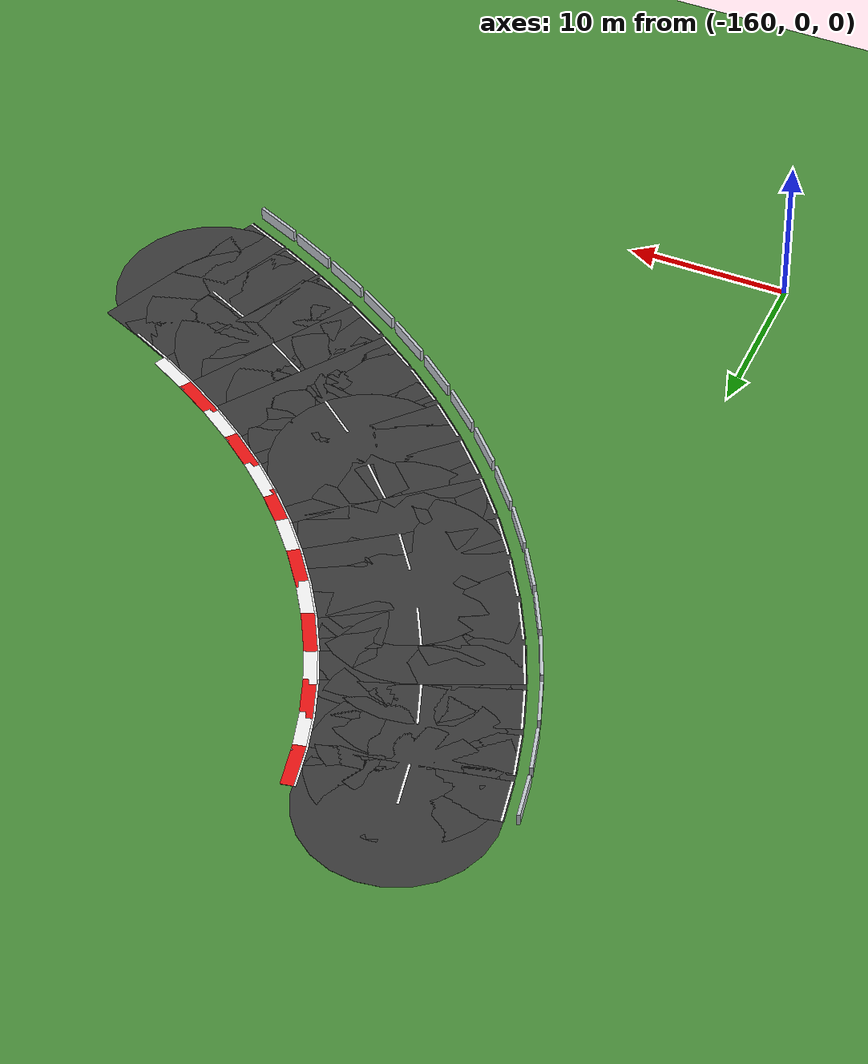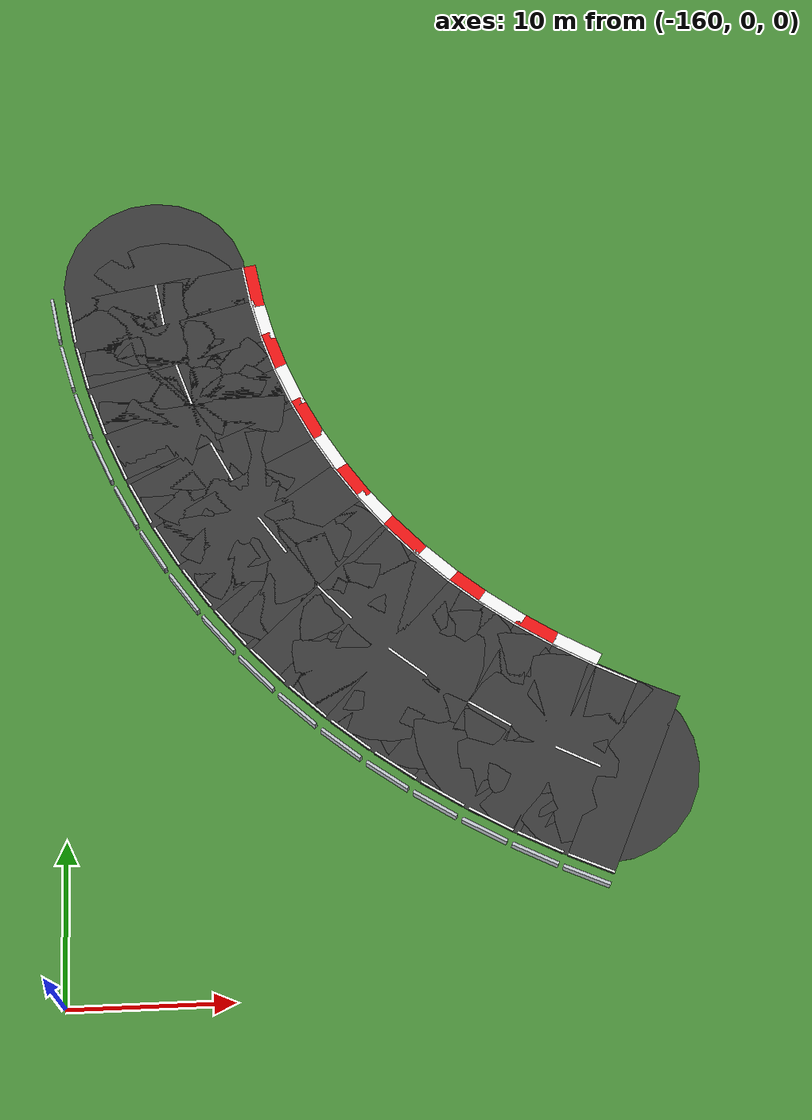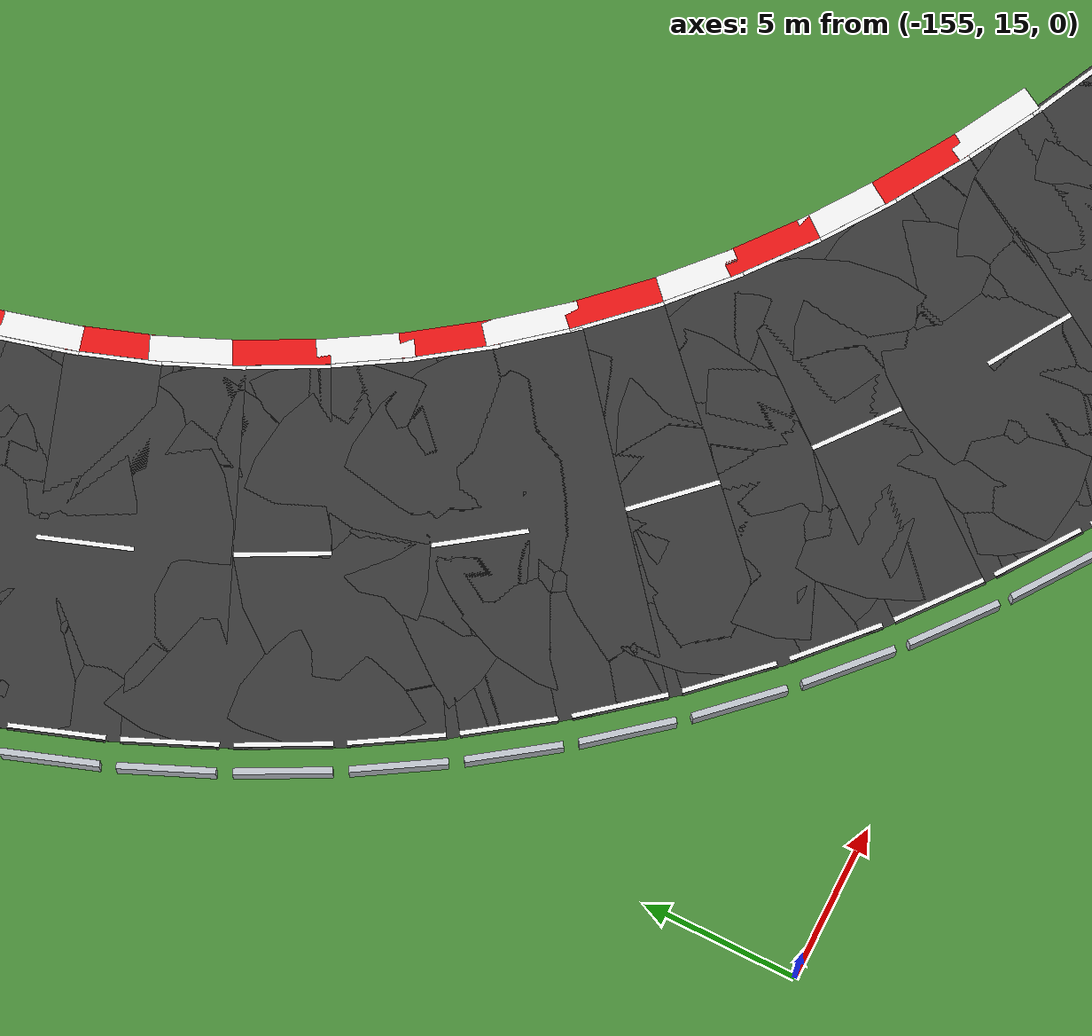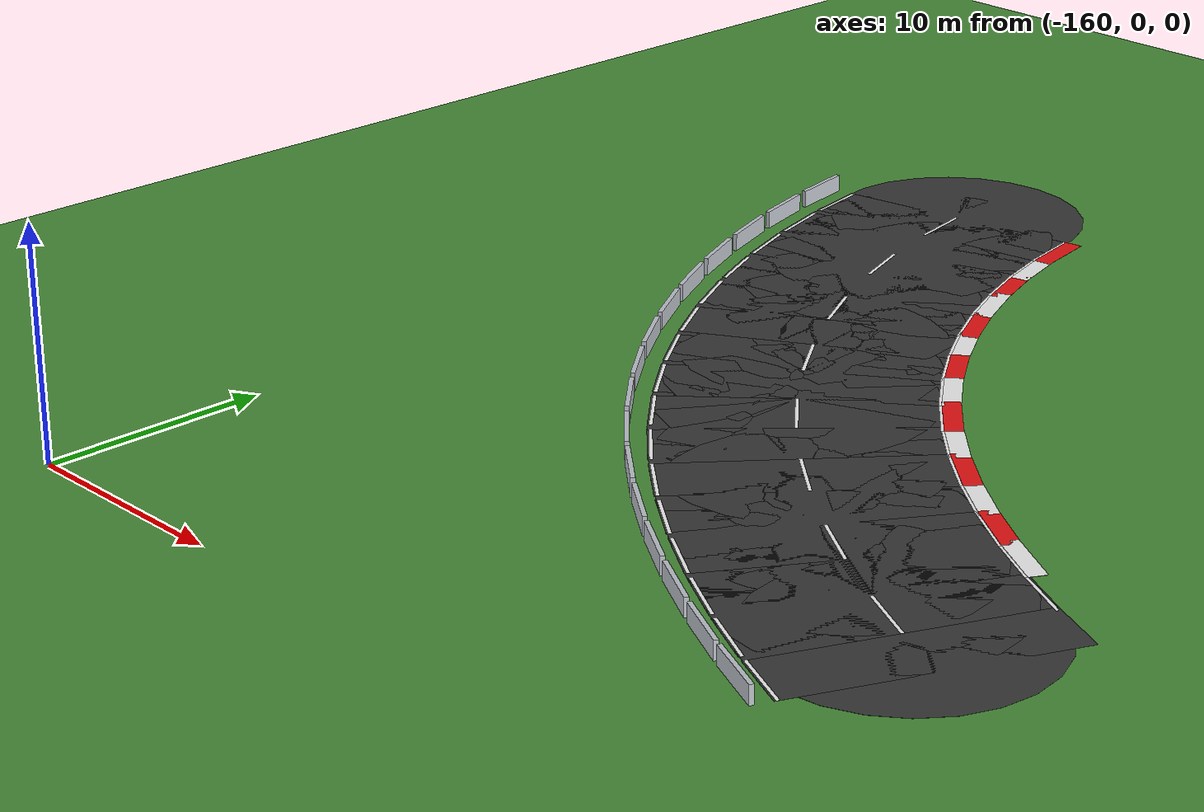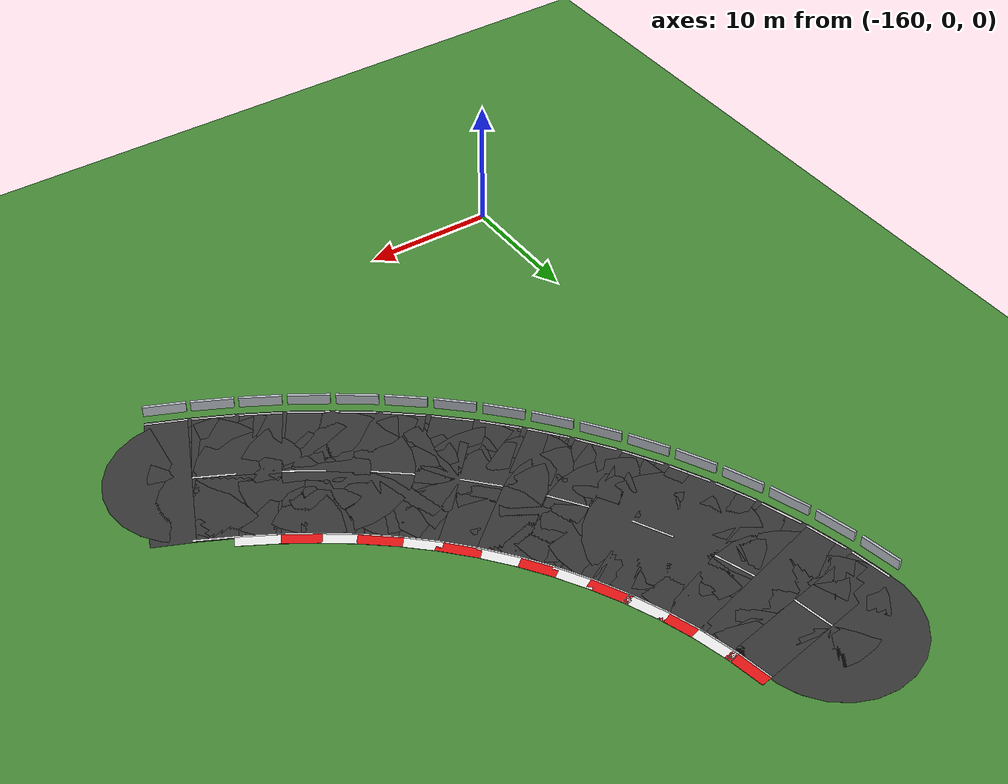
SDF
<sdf version="1.6">
 <world name="sem_silesia_ring_2026">
  <model name="ground_plane">
   <static>true</static>
   <link name="link">
    <collision name="collision">
     <geometry><plane><normal>0 0 1</normal><size>1200 1200</size></plane></geometry>
     <surface><friction><ode><mu>0.6</mu><mu2>0.6</mu2></ode></friction></surface>
    </collision>
    <visual name="visual">
     <geometry><plane><normal>0 0 1</normal><size>1200 1200</size></plane></geometry>
     <material><ambient>0.28 0.55 0.22 1</ambient><diffuse>0.28 0.55 0.22 1</diffuse></material>
    </visual>
   </link>
  </model>
  <model name="road_s382">
   <static>true</static>
   <pose>-154.1291 45.8454 0.0030 0 0 -1.3925</pose>
   <link name="link">
    <visual name="v">
     <geometry><box><size>3.0018 12.0000 0.0060</size></box></geometry>
     <material><ambient>0.22 0.22 0.22 1</ambient><diffuse>0.22 0.22 0.22 1</diffuse></material>
    </visual>
    <collision name="c">
     <geometry><box><size>3.0018 12.0000 0.0060</size></box></geometry>
     <surface><friction><ode><mu>0.9</mu><mu2>0.9</mu2></ode></friction></surface>
    </collision>
   </link>
  </model>
  <model name="road_jnt382">
   <static>true</static>
   <pose>-154.3953 47.3225 0.0030 0 0 0</pose>
   <link name="link">
    <visual name="v">
     <geometry><cylinder><radius>6.0000</radius><length>0.0060</length></cylinder></geometry>
     <material><ambient>0.22 0.22 0.22 1</ambient><diffuse>0.22 0.22 0.22 1</diffuse></material>
    </visual>
    <collision name="c">
     <geometry><cylinder><radius>6.0000</radius><length>0.0060</length></cylinder></geometry>
     <surface><friction><ode><mu>0.9</mu><mu2>0.9</mu2></ode></friction></surface>
    </collision>
   </link>
  </model>
  <model name="wl_L_s382">
   <static>true</static>
   <pose>-148.3719 46.8828 0.0070 0 0 -1.3925</pose>
   <link name="link">
    <visual name="v">
     <geometry><box><size>3.0018 0.1500 0.0080</size></box></geometry>
     <material><ambient>0.95 0.95 0.95 1</ambient><diffuse>0.95 0.95 0.95 1</diffuse></material>
    </visual>
   </link>
  </model>
  <model name="wl_R_s382">
   <static>true</static>
   <pose>-159.8864 44.8080 0.0070 0 0 -1.3925</pose>
   <link name="link">
    <visual name="v">
     <geometry><box><size>3.0018 0.1500 0.0080</size></box></geometry>
     <material><ambient>0.95 0.95 0.95 1</ambient><diffuse>0.95 0.95 0.95 1</diffuse></material>
    </visual>
   </link>
  </model>
  <model name="cd_s382">
   <static>true</static>
   <pose>-154.1291 45.8454 0.0070 0 0 -1.3925</pose>
   <link name="link">
    <visual name="v">
     <geometry><box><size>3.0018 0.1500 0.0080</size></box></geometry>
     <material><ambient>0.95 0.95 0.95 1</ambient><diffuse>0.95 0.95 0.95 1</diffuse></material>
    </visual>
   </link>
  </model>
  <model name="kerb_L_382">
   <static>true</static>
   <pose>-147.9290 46.9626 0.0120 0 0 -1.3925</pose>
   <link name="link">
    <visual name="v">
     <geometry><box><size>3.0018 0.8000 0.0160</size></box></geometry>
     <material><ambient>0.92 0.08 0.08 1</ambient><diffuse>0.92 0.08 0.08 1</diffuse></material>
    </visual>
   </link>
  </model>
  <model name="arm_outR_382">
   <static>true</static>
   <pose>-160.8214 44.6395 0.4000 0 0 -1.3925</pose>
   <link name="link">
    <visual name="v">
     <geometry><box><size>3.0018 0.2000 0.8000</size></box></geometry>
     <material><ambient>0.75 0.77 0.80 1</ambient><diffuse>0.75 0.77 0.80 1</diffuse></material>
    </visual>
    <collision name="c">
     <geometry><box><size>3.0018 0.2000 0.8000</size></box></geometry>
     <surface><friction><ode><mu>0.8</mu><mu2>0.8</mu2></ode></friction></surface>
    </collision>
   </link>
  </model>
  <model name="road_s383">
   <static>true</static>
   <pose>-153.4832 42.9163 0.0030 0 0 -1.3150</pose>
   <link name="link">
    <visual name="v">
     <geometry><box><size>3.0018 12.0000 0.0060</size></box></geometry>
     <material><ambient>0.22 0.22 0.22 1</ambient><diffuse>0.22 0.22 0.22 1</diffuse></material>
    </visual>
    <collision name="c">
     <geometry><box><size>3.0018 12.0000 0.0060</size></box></geometry>
     <surface><friction><ode><mu>0.9</mu><mu2>0.9</mu2></ode></friction></surface>
    </collision>
   </link>
  </model>
  <model name="road_jnt383">
   <static>true</static>
   <pose>-153.8630 44.3683 0.0030 0 0 0</pose>
   <link name="link">
    <visual name="v">
     <geometry><cylinder><radius>6.0000</radius><length>0.0060</length></cylinder></geometry>
     <material><ambient>0.22 0.22 0.22 1</ambient><diffuse>0.22 0.22 0.22 1</diffuse></material>
    </visual>
    <collision name="c">
     <geometry><cylinder><radius>6.0000</radius><length>0.0060</length></cylinder></geometry>
     <surface><friction><ode><mu>0.9</mu><mu2>0.9</mu2></ode></friction></surface>
    </collision>
   </link>
  </model>
  <model name="wl_L_s383">
   <static>true</static>
   <pose>-147.8236 44.3963 0.0070 0 0 -1.3150</pose>
   <link name="link">
    <visual name="v">
     <geometry><box><size>3.0018 0.1500 0.0080</size></box></geometry>
     <material><ambient>0.95 0.95 0.95 1</ambient><diffuse>0.95 0.95 0.95 1</diffuse></material>
    </visual>
   </link>
  </model>
  <model name="wl_R_s383">
   <static>true</static>
   <pose>-159.1429 41.4362 0.0070 0 0 -1.3150</pose>
   <link name="link">
    <visual name="v">
     <geometry><box><size>3.0018 0.1500 0.0080</size></box></geometry>
     <material><ambient>0.95 0.95 0.95 1</ambient><diffuse>0.95 0.95 0.95 1</diffuse></material>
    </visual>
   </link>
  </model>
  <model name="kerb_L_383">
   <static>true</static>
   <pose>-147.3882 44.5102 0.0120 0 0 -1.3150</pose>
   <link name="link">
    <visual name="v">
     <geometry><box><size>3.0018 0.8000 0.0160</size></box></geometry>
     <material><ambient>0.95 0.95 0.95 1</ambient><diffuse>0.95 0.95 0.95 1</diffuse></material>
    </visual>
   </link>
  </model>
  <model name="arm_outR_383">
   <static>true</static>
   <pose>-160.0620 41.1958 0.4000 0 0 -1.3150</pose>
   <link name="link">
    <visual name="v">
     <geometry><box><size>3.0018 0.2000 0.8000</size></box></geometry>
     <material><ambient>0.75 0.77 0.80 1</ambient><diffuse>0.75 0.77 0.80 1</diffuse></material>
    </visual>
    <collision name="c">
     <geometry><box><size>3.0018 0.2000 0.8000</size></box></geometry>
     <surface><friction><ode><mu>0.8</mu><mu2>0.8</mu2></ode></friction></surface>
    </collision>
   </link>
  </model>
  <model name="road_s384">
   <static>true</static>
   <pose>-152.6162 40.0446 0.0030 0 0 -1.2401</pose>
   <link name="link">
    <visual name="v">
     <geometry><box><size>3.0019 12.0000 0.0060</size></box></geometry>
     <material><ambient>0.22 0.22 0.22 1</ambient><diffuse>0.22 0.22 0.22 1</diffuse></material>
    </visual>
    <collision name="c">
     <geometry><box><size>3.0019 12.0000 0.0060</size></box></geometry>
     <surface><friction><ode><mu>0.9</mu><mu2>0.9</mu2></ode></friction></surface>
    </collision>
   </link>
  </model>
  <model name="road_jnt384">
   <static>true</static>
   <pose>-153.1035 41.4642 0.0030 0 0 0</pose>
   <link name="link">
    <visual name="v">
     <geometry><cylinder><radius>6.0000</radius><length>0.0060</length></cylinder></geometry>
     <material><ambient>0.22 0.22 0.22 1</ambient><diffuse>0.22 0.22 0.22 1</diffuse></material>
    </visual>
    <collision name="c">
     <geometry><cylinder><radius>6.0000</radius><length>0.0060</length></cylinder></geometry>
     <surface><friction><ode><mu>0.9</mu><mu2>0.9</mu2></ode></friction></surface>
    </collision>
   </link>
  </model>
  <model name="wl_L_s384">
   <static>true</static>
   <pose>-147.0831 41.9439 0.0070 0 0 -1.2401</pose>
   <link name="link">
    <visual name="v">
     <geometry><box><size>3.0019 0.1500 0.0080</size></box></geometry>
     <material><ambient>0.95 0.95 0.95 1</ambient><diffuse>0.95 0.95 0.95 1</diffuse></material>
    </visual>
   </link>
  </model>
  <model name="wl_R_s384">
   <static>true</static>
   <pose>-158.1493 38.1452 0.0070 0 0 -1.2401</pose>
   <link name="link">
    <visual name="v">
     <geometry><box><size>3.0019 0.1500 0.0080</size></box></geometry>
     <material><ambient>0.95 0.95 0.95 1</ambient><diffuse>0.95 0.95 0.95 1</diffuse></material>
    </visual>
   </link>
  </model>
  <model name="cd_s384">
   <static>true</static>
   <pose>-152.6162 40.0446 0.0070 0 0 -1.2401</pose>
   <link name="link">
    <visual name="v">
     <geometry><box><size>3.0019 0.1500 0.0080</size></box></geometry>
     <material><ambient>0.95 0.95 0.95 1</ambient><diffuse>0.95 0.95 0.95 1</diffuse></material>
    </visual>
   </link>
  </model>
  <model name="kerb_L_384">
   <static>true</static>
   <pose>-146.6575 42.0900 0.0120 0 0 -1.2401</pose>
   <link name="link">
    <visual name="v">
     <geometry><box><size>3.0019 0.8000 0.0160</size></box></geometry>
     <material><ambient>0.92 0.08 0.08 1</ambient><diffuse>0.92 0.08 0.08 1</diffuse></material>
    </visual>
   </link>
  </model>
  <model name="arm_outR_384">
   <static>true</static>
   <pose>-159.0478 37.8368 0.4000 0 0 -1.2401</pose>
   <link name="link">
    <visual name="v">
     <geometry><box><size>3.0019 0.2000 0.8000</size></box></geometry>
     <material><ambient>0.75 0.77 0.80 1</ambient><diffuse>0.75 0.77 0.80 1</diffuse></material>
    </visual>
    <collision name="c">
     <geometry><box><size>3.0019 0.2000 0.8000</size></box></geometry>
     <surface><friction><ode><mu>0.8</mu><mu2>0.8</mu2></ode></friction></surface>
    </collision>
   </link>
  </model>
  <model name="road_s385">
   <static>true</static>
   <pose>-151.5398 37.2444 0.0030 0 0 -1.1675</pose>
   <link name="link">
    <visual name="v">
     <geometry><box><size>3.0019 12.0000 0.0060</size></box></geometry>
     <material><ambient>0.22 0.22 0.22 1</ambient><diffuse>0.22 0.22 0.22 1</diffuse></material>
    </visual>
    <collision name="c">
     <geometry><box><size>3.0019 12.0000 0.0060</size></box></geometry>
     <surface><friction><ode><mu>0.9</mu><mu2>0.9</mu2></ode></friction></surface>
    </collision>
   </link>
  </model>
  <model name="road_jnt385">
   <static>true</static>
   <pose>-152.1289 38.6249 0.0030 0 0 0</pose>
   <link name="link">
    <visual name="v">
     <geometry><cylinder><radius>6.0000</radius><length>0.0060</length></cylinder></geometry>
     <material><ambient>0.22 0.22 0.22 1</ambient><diffuse>0.22 0.22 0.22 1</diffuse></material>
    </visual>
    <collision name="c">
     <geometry><cylinder><radius>6.0000</radius><length>0.0060</length></cylinder></geometry>
     <surface><friction><ode><mu>0.9</mu><mu2>0.9</mu2></ode></friction></surface>
    </collision>
   </link>
  </model>
  <model name="wl_L_s385">
   <static>true</static>
   <pose>-146.1592 39.5402 0.0070 0 0 -1.1675</pose>
   <link name="link">
    <visual name="v">
     <geometry><box><size>3.0019 0.1500 0.0080</size></box></geometry>
     <material><ambient>0.95 0.95 0.95 1</ambient><diffuse>0.95 0.95 0.95 1</diffuse></material>
    </visual>
   </link>
  </model>
  <model name="wl_R_s385">
   <static>true</static>
   <pose>-156.9205 34.9486 0.0070 0 0 -1.1675</pose>
   <link name="link">
    <visual name="v">
     <geometry><box><size>3.0019 0.1500 0.0080</size></box></geometry>
     <material><ambient>0.95 0.95 0.95 1</ambient><diffuse>0.95 0.95 0.95 1</diffuse></material>
    </visual>
   </link>
  </model>
  <model name="kerb_L_385">
   <static>true</static>
   <pose>-145.7453 39.7168 0.0120 0 0 -1.1675</pose>
   <link name="link">
    <visual name="v">
     <geometry><box><size>3.0019 0.8000 0.0160</size></box></geometry>
     <material><ambient>0.95 0.95 0.95 1</ambient><diffuse>0.95 0.95 0.95 1</diffuse></material>
    </visual>
   </link>
  </model>
  <model name="arm_outR_385">
   <static>true</static>
   <pose>-157.7943 34.5757 0.4000 0 0 -1.1675</pose>
   <link name="link">
    <visual name="v">
     <geometry><box><size>3.0019 0.2000 0.8000</size></box></geometry>
     <material><ambient>0.75 0.77 0.80 1</ambient><diffuse>0.75 0.77 0.80 1</diffuse></material>
    </visual>
    <collision name="c">
     <geometry><box><size>3.0019 0.2000 0.8000</size></box></geometry>
     <surface><friction><ode><mu>0.8</mu><mu2>0.8</mu2></ode></friction></surface>
    </collision>
   </link>
  </model>
  <model name="road_s386">
   <static>true</static>
   <pose>-150.2655 34.5285 0.0030 0 0 -1.0967</pose>
   <link name="link">
    <visual name="v">
     <geometry><box><size>3.0019 12.0000 0.0060</size></box></geometry>
     <material><ambient>0.22 0.22 0.22 1</ambient><diffuse>0.22 0.22 0.22 1</diffuse></material>
    </visual>
    <collision name="c">
     <geometry><box><size>3.0019 12.0000 0.0060</size></box></geometry>
     <surface><friction><ode><mu>0.9</mu><mu2>0.9</mu2></ode></friction></surface>
    </collision>
   </link>
  </model>
  <model name="road_jnt386">
   <static>true</static>
   <pose>-150.9508 35.8639 0.0030 0 0 0</pose>
   <link name="link">
    <visual name="v">
     <geometry><cylinder><radius>6.0000</radius><length>0.0060</length></cylinder></geometry>
     <material><ambient>0.22 0.22 0.22 1</ambient><diffuse>0.22 0.22 0.22 1</diffuse></material>
    </visual>
    <collision name="c">
     <geometry><cylinder><radius>6.0000</radius><length>0.0060</length></cylinder></geometry>
     <surface><friction><ode><mu>0.9</mu><mu2>0.9</mu2></ode></friction></surface>
    </collision>
   </link>
  </model>
  <model name="wl_L_s386">
   <static>true</static>
   <pose>-145.0608 37.1994 0.0070 0 0 -1.0967</pose>
   <link name="link">
    <visual name="v">
     <geometry><box><size>3.0019 0.1500 0.0080</size></box></geometry>
     <material><ambient>0.95 0.95 0.95 1</ambient><diffuse>0.95 0.95 0.95 1</diffuse></material>
    </visual>
   </link>
  </model>
  <model name="wl_R_s386">
   <static>true</static>
   <pose>-155.4702 31.8576 0.0070 0 0 -1.0967</pose>
   <link name="link">
    <visual name="v">
     <geometry><box><size>3.0019 0.1500 0.0080</size></box></geometry>
     <material><ambient>0.95 0.95 0.95 1</ambient><diffuse>0.95 0.95 0.95 1</diffuse></material>
    </visual>
   </link>
  </model>
  <model name="cd_s386">
   <static>true</static>
   <pose>-150.2655 34.5285 0.0070 0 0 -1.0967</pose>
   <link name="link">
    <visual name="v">
     <geometry><box><size>3.0019 0.1500 0.0080</size></box></geometry>
     <material><ambient>0.95 0.95 0.95 1</ambient><diffuse>0.95 0.95 0.95 1</diffuse></material>
    </visual>
   </link>
  </model>
  <model name="kerb_L_386">
   <static>true</static>
   <pose>-144.6605 37.4048 0.0120 0 0 -1.0967</pose>
   <link name="link">
    <visual name="v">
     <geometry><box><size>3.0019 0.8000 0.0160</size></box></geometry>
     <material><ambient>0.92 0.08 0.08 1</ambient><diffuse>0.92 0.08 0.08 1</diffuse></material>
    </visual>
   </link>
  </model>
  <model name="arm_outR_386">
   <static>true</static>
   <pose>-156.3154 31.4239 0.4000 0 0 -1.0967</pose>
   <link name="link">
    <visual name="v">
     <geometry><box><size>3.0019 0.2000 0.8000</size></box></geometry>
     <material><ambient>0.75 0.77 0.80 1</ambient><diffuse>0.75 0.77 0.80 1</diffuse></material>
    </visual>
    <collision name="c">
     <geometry><box><size>3.0019 0.2000 0.8000</size></box></geometry>
     <surface><friction><ode><mu>0.8</mu><mu2>0.8</mu2></ode></friction></surface>
    </collision>
   </link>
  </model>
  <model name="road_s387">
   <static>true</static>
   <pose>-148.8037 31.9086 0.0030 0 0 -1.0271</pose>
   <link name="link">
    <visual name="v">
     <geometry><box><size>3.0019 12.0000 0.0060</size></box></geometry>
     <material><ambient>0.22 0.22 0.22 1</ambient><diffuse>0.22 0.22 0.22 1</diffuse></material>
    </visual>
    <collision name="c">
     <geometry><box><size>3.0019 12.0000 0.0060</size></box></geometry>
     <surface><friction><ode><mu>0.9</mu><mu2>0.9</mu2></ode></friction></surface>
    </collision>
   </link>
  </model>
  <model name="road_jnt387">
   <static>true</static>
   <pose>-149.5802 33.1931 0.0030 0 0 0</pose>
   <link name="link">
    <visual name="v">
     <geometry><cylinder><radius>6.0000</radius><length>0.0060</length></cylinder></geometry>
     <material><ambient>0.22 0.22 0.22 1</ambient><diffuse>0.22 0.22 0.22 1</diffuse></material>
    </visual>
    <collision name="c">
     <geometry><cylinder><radius>6.0000</radius><length>0.0060</length></cylinder></geometry>
     <surface><friction><ode><mu>0.9</mu><mu2>0.9</mu2></ode></friction></surface>
    </collision>
   </link>
  </model>
  <model name="wl_L_s387">
   <static>true</static>
   <pose>-143.7974 34.9350 0.0070 0 0 -1.0271</pose>
   <link name="link">
    <visual name="v">
     <geometry><box><size>3.0019 0.1500 0.0080</size></box></geometry>
     <material><ambient>0.95 0.95 0.95 1</ambient><diffuse>0.95 0.95 0.95 1</diffuse></material>
    </visual>
   </link>
  </model>
  <model name="wl_R_s387">
   <static>true</static>
   <pose>-153.8101 28.8822 0.0070 0 0 -1.0271</pose>
   <link name="link">
    <visual name="v">
     <geometry><box><size>3.0019 0.1500 0.0080</size></box></geometry>
     <material><ambient>0.95 0.95 0.95 1</ambient><diffuse>0.95 0.95 0.95 1</diffuse></material>
    </visual>
   </link>
  </model>
  <model name="kerb_L_387">
   <static>true</static>
   <pose>-143.4123 35.1677 0.0120 0 0 -1.0271</pose>
   <link name="link">
    <visual name="v">
     <geometry><box><size>3.0019 0.8000 0.0160</size></box></geometry>
     <material><ambient>0.95 0.95 0.95 1</ambient><diffuse>0.95 0.95 0.95 1</diffuse></material>
    </visual>
   </link>
  </model>
  <model name="arm_outR_387">
   <static>true</static>
   <pose>-154.6231 28.3907 0.4000 0 0 -1.0271</pose>
   <link name="link">
    <visual name="v">
     <geometry><box><size>3.0019 0.2000 0.8000</size></box></geometry>
     <material><ambient>0.75 0.77 0.80 1</ambient><diffuse>0.75 0.77 0.80 1</diffuse></material>
    </visual>
    <collision name="c">
     <geometry><box><size>3.0019 0.2000 0.8000</size></box></geometry>
     <surface><friction><ode><mu>0.8</mu><mu2>0.8</mu2></ode></friction></surface>
    </collision>
   </link>
  </model>
  <model name="road_s388">
   <static>true</static>
   <pose>-147.1640 29.3962 0.0030 0 0 -0.9580</pose>
   <link name="link">
    <visual name="v">
     <geometry><box><size>3.0019 12.0000 0.0060</size></box></geometry>
     <material><ambient>0.22 0.22 0.22 1</ambient><diffuse>0.22 0.22 0.22 1</diffuse></material>
    </visual>
    <collision name="c">
     <geometry><box><size>3.0019 12.0000 0.0060</size></box></geometry>
     <surface><friction><ode><mu>0.9</mu><mu2>0.9</mu2></ode></friction></surface>
    </collision>
   </link>
  </model>
  <model name="road_jnt388">
   <static>true</static>
   <pose>-148.0272 30.6241 0.0030 0 0 0</pose>
   <link name="link">
    <visual name="v">
     <geometry><cylinder><radius>6.0000</radius><length>0.0060</length></cylinder></geometry>
     <material><ambient>0.22 0.22 0.22 1</ambient><diffuse>0.22 0.22 0.22 1</diffuse></material>
    </visual>
    <collision name="c">
     <geometry><cylinder><radius>6.0000</radius><length>0.0060</length></cylinder></geometry>
     <surface><friction><ode><mu>0.9</mu><mu2>0.9</mu2></ode></friction></surface>
    </collision>
   </link>
  </model>
  <model name="wl_L_s388">
   <static>true</static>
   <pose>-142.3783 32.7606 0.0070 0 0 -0.9580</pose>
   <link name="link">
    <visual name="v">
     <geometry><box><size>3.0019 0.1500 0.0080</size></box></geometry>
     <material><ambient>0.95 0.95 0.95 1</ambient><diffuse>0.95 0.95 0.95 1</diffuse></material>
    </visual>
   </link>
  </model>
  <model name="wl_R_s388">
   <static>true</static>
   <pose>-151.9497 26.0317 0.0070 0 0 -0.9580</pose>
   <link name="link">
    <visual name="v">
     <geometry><box><size>3.0019 0.1500 0.0080</size></box></geometry>
     <material><ambient>0.95 0.95 0.95 1</ambient><diffuse>0.95 0.95 0.95 1</diffuse></material>
    </visual>
   </link>
  </model>
  <model name="cd_s388">
   <static>true</static>
   <pose>-147.1640 29.3962 0.0070 0 0 -0.9580</pose>
   <link name="link">
    <visual name="v">
     <geometry><box><size>3.0019 0.1500 0.0080</size></box></geometry>
     <material><ambient>0.95 0.95 0.95 1</ambient><diffuse>0.95 0.95 0.95 1</diffuse></material>
    </visual>
   </link>
  </model>
  <model name="kerb_L_388">
   <static>true</static>
   <pose>-142.0102 33.0194 0.0120 0 0 -0.9580</pose>
   <link name="link">
    <visual name="v">
     <geometry><box><size>3.0019 0.8000 0.0160</size></box></geometry>
     <material><ambient>0.92 0.08 0.08 1</ambient><diffuse>0.92 0.08 0.08 1</diffuse></material>
    </visual>
   </link>
  </model>
  <model name="arm_outR_388">
   <static>true</static>
   <pose>-152.7269 25.4854 0.4000 0 0 -0.9580</pose>
   <link name="link">
    <visual name="v">
     <geometry><box><size>3.0019 0.2000 0.8000</size></box></geometry>
     <material><ambient>0.75 0.77 0.80 1</ambient><diffuse>0.75 0.77 0.80 1</diffuse></material>
    </visual>
    <collision name="c">
     <geometry><box><size>3.0019 0.2000 0.8000</size></box></geometry>
     <surface><friction><ode><mu>0.8</mu><mu2>0.8</mu2></ode></friction></surface>
    </collision>
   </link>
  </model>
  <model name="road_s389">
   <static>true</static>
   <pose>-145.3547 27.0030 0.0030 0 0 -0.8889</pose>
   <link name="link">
    <visual name="v">
     <geometry><box><size>3.0019 12.0000 0.0060</size></box></geometry>
     <material><ambient>0.22 0.22 0.22 1</ambient><diffuse>0.22 0.22 0.22 1</diffuse></material>
    </visual>
    <collision name="c">
     <geometry><box><size>3.0019 12.0000 0.0060</size></box></geometry>
     <surface><friction><ode><mu>0.9</mu><mu2>0.9</mu2></ode></friction></surface>
    </collision>
   </link>
  </model>
  <model name="road_jnt389">
   <static>true</static>
   <pose>-146.3008 28.1683 0.0030 0 0 0</pose>
   <link name="link">
    <visual name="v">
     <geometry><cylinder><radius>6.0000</radius><length>0.0060</length></cylinder></geometry>
     <material><ambient>0.22 0.22 0.22 1</ambient><diffuse>0.22 0.22 0.22 1</diffuse></material>
    </visual>
    <collision name="c">
     <geometry><cylinder><radius>6.0000</radius><length>0.0060</length></cylinder></geometry>
     <surface><friction><ode><mu>0.9</mu><mu2>0.9</mu2></ode></friction></surface>
    </collision>
   </link>
  </model>
  <model name="wl_L_s389">
   <static>true</static>
   <pose>-140.8130 30.6902 0.0070 0 0 -0.8889</pose>
   <link name="link">
    <visual name="v">
     <geometry><box><size>3.0019 0.1500 0.0080</size></box></geometry>
     <material><ambient>0.95 0.95 0.95 1</ambient><diffuse>0.95 0.95 0.95 1</diffuse></material>
    </visual>
   </link>
  </model>
  <model name="wl_R_s389">
   <static>true</static>
   <pose>-149.8964 23.3157 0.0070 0 0 -0.8889</pose>
   <link name="link">
    <visual name="v">
     <geometry><box><size>3.0019 0.1500 0.0080</size></box></geometry>
     <material><ambient>0.95 0.95 0.95 1</ambient><diffuse>0.95 0.95 0.95 1</diffuse></material>
    </visual>
   </link>
  </model>
  <model name="kerb_L_389">
   <static>true</static>
   <pose>-140.4637 30.9739 0.0120 0 0 -0.8889</pose>
   <link name="link">
    <visual name="v">
     <geometry><box><size>3.0019 0.8000 0.0160</size></box></geometry>
     <material><ambient>0.95 0.95 0.95 1</ambient><diffuse>0.95 0.95 0.95 1</diffuse></material>
    </visual>
   </link>
  </model>
  <model name="arm_outR_389">
   <static>true</static>
   <pose>-150.6339 22.7169 0.4000 0 0 -0.8889</pose>
   <link name="link">
    <visual name="v">
     <geometry><box><size>3.0019 0.2000 0.8000</size></box></geometry>
     <material><ambient>0.75 0.77 0.80 1</ambient><diffuse>0.75 0.77 0.80 1</diffuse></material>
    </visual>
    <collision name="c">
     <geometry><box><size>3.0019 0.2000 0.8000</size></box></geometry>
     <surface><friction><ode><mu>0.8</mu><mu2>0.8</mu2></ode></friction></surface>
    </collision>
   </link>
  </model>
  <model name="road_s390">
   <static>true</static>
   <pose>-143.3837 24.7412 0.0030 0 0 -0.8191</pose>
   <link name="link">
    <visual name="v">
     <geometry><box><size>3.0019 12.0000 0.0060</size></box></geometry>
     <material><ambient>0.22 0.22 0.22 1</ambient><diffuse>0.22 0.22 0.22 1</diffuse></material>
    </visual>
    <collision name="c">
     <geometry><box><size>3.0019 12.0000 0.0060</size></box></geometry>
     <surface><friction><ode><mu>0.9</mu><mu2>0.9</mu2></ode></friction></surface>
    </collision>
   </link>
  </model>
  <model name="road_jnt390">
   <static>true</static>
   <pose>-144.4086 25.8377 0.0030 0 0 0</pose>
   <link name="link">
    <visual name="v">
     <geometry><cylinder><radius>6.0000</radius><length>0.0060</length></cylinder></geometry>
     <material><ambient>0.22 0.22 0.22 1</ambient><diffuse>0.22 0.22 0.22 1</diffuse></material>
    </visual>
    <collision name="c">
     <geometry><cylinder><radius>6.0000</radius><length>0.0060</length></cylinder></geometry>
     <surface><friction><ode><mu>0.9</mu><mu2>0.9</mu2></ode></friction></surface>
    </collision>
   </link>
  </model>
  <model name="wl_L_s390">
   <static>true</static>
   <pose>-139.1100 28.7360 0.0070 0 0 -0.8191</pose>
   <link name="link">
    <visual name="v">
     <geometry><box><size>3.0019 0.1500 0.0080</size></box></geometry>
     <material><ambient>0.95 0.95 0.95 1</ambient><diffuse>0.95 0.95 0.95 1</diffuse></material>
    </visual>
   </link>
  </model>
  <model name="wl_R_s390">
   <static>true</static>
   <pose>-147.6573 20.7464 0.0070 0 0 -0.8191</pose>
   <link name="link">
    <visual name="v">
     <geometry><box><size>3.0019 0.1500 0.0080</size></box></geometry>
     <material><ambient>0.95 0.95 0.95 1</ambient><diffuse>0.95 0.95 0.95 1</diffuse></material>
    </visual>
   </link>
  </model>
  <model name="cd_s390">
   <static>true</static>
   <pose>-143.3837 24.7412 0.0070 0 0 -0.8191</pose>
   <link name="link">
    <visual name="v">
     <geometry><box><size>3.0019 0.1500 0.0080</size></box></geometry>
     <material><ambient>0.95 0.95 0.95 1</ambient><diffuse>0.95 0.95 0.95 1</diffuse></material>
    </visual>
   </link>
  </model>
  <model name="kerb_L_390">
   <static>true</static>
   <pose>-138.7813 29.0433 0.0120 0 0 -0.8191</pose>
   <link name="link">
    <visual name="v">
     <geometry><box><size>3.0019 0.8000 0.0160</size></box></geometry>
     <material><ambient>0.92 0.08 0.08 1</ambient><diffuse>0.92 0.08 0.08 1</diffuse></material>
    </visual>
   </link>
  </model>
  <model name="arm_outR_390">
   <static>true</static>
   <pose>-148.3514 20.0977 0.4000 0 0 -0.8191</pose>
   <link name="link">
    <visual name="v">
     <geometry><box><size>3.0019 0.2000 0.8000</size></box></geometry>
     <material><ambient>0.75 0.77 0.80 1</ambient><diffuse>0.75 0.77 0.80 1</diffuse></material>
    </visual>
    <collision name="c">
     <geometry><box><size>3.0019 0.2000 0.8000</size></box></geometry>
     <surface><friction><ode><mu>0.8</mu><mu2>0.8</mu2></ode></friction></surface>
    </collision>
   </link>
  </model>
  <model name="road_s391">
   <static>true</static>
   <pose>-141.2613 22.6206 0.0030 0 0 -0.7508</pose>
   <link name="link">
    <visual name="v">
     <geometry><box><size>3.0020 12.0000 0.0060</size></box></geometry>
     <material><ambient>0.22 0.22 0.22 1</ambient><diffuse>0.22 0.22 0.22 1</diffuse></material>
    </visual>
    <collision name="c">
     <geometry><box><size>3.0020 12.0000 0.0060</size></box></geometry>
     <surface><friction><ode><mu>0.9</mu><mu2>0.9</mu2></ode></friction></surface>
    </collision>
   </link>
  </model>
  <model name="road_jnt391">
   <static>true</static>
   <pose>-142.3587 23.6447 0.0030 0 0 0</pose>
   <link name="link">
    <visual name="v">
     <geometry><cylinder><radius>6.0000</radius><length>0.0060</length></cylinder></geometry>
     <material><ambient>0.22 0.22 0.22 1</ambient><diffuse>0.22 0.22 0.22 1</diffuse></material>
    </visual>
    <collision name="c">
     <geometry><cylinder><radius>6.0000</radius><length>0.0060</length></cylinder></geometry>
     <surface><friction><ode><mu>0.9</mu><mu2>0.9</mu2></ode></friction></surface>
    </collision>
   </link>
  </model>
  <model name="wl_L_s391">
   <static>true</static>
   <pose>-137.2701 26.8976 0.0070 0 0 -0.7508</pose>
   <link name="link">
    <visual name="v">
     <geometry><box><size>3.0020 0.1500 0.0080</size></box></geometry>
     <material><ambient>0.95 0.95 0.95 1</ambient><diffuse>0.95 0.95 0.95 1</diffuse></material>
    </visual>
   </link>
  </model>
  <model name="wl_R_s391">
   <static>true</static>
   <pose>-145.2526 18.3436 0.0070 0 0 -0.7508</pose>
   <link name="link">
    <visual name="v">
     <geometry><box><size>3.0020 0.1500 0.0080</size></box></geometry>
     <material><ambient>0.95 0.95 0.95 1</ambient><diffuse>0.95 0.95 0.95 1</diffuse></material>
    </visual>
   </link>
  </model>
  <model name="kerb_L_391">
   <static>true</static>
   <pose>-136.9631 27.2266 0.0120 0 0 -0.7508</pose>
   <link name="link">
    <visual name="v">
     <geometry><box><size>3.0020 0.8000 0.0160</size></box></geometry>
     <material><ambient>0.95 0.95 0.95 1</ambient><diffuse>0.95 0.95 0.95 1</diffuse></material>
    </visual>
   </link>
  </model>
  <model name="arm_outR_391">
   <static>true</static>
   <pose>-145.9007 17.6491 0.4000 0 0 -0.7508</pose>
   <link name="link">
    <visual name="v">
     <geometry><box><size>3.0020 0.2000 0.8000</size></box></geometry>
     <material><ambient>0.75 0.77 0.80 1</ambient><diffuse>0.75 0.77 0.80 1</diffuse></material>
    </visual>
    <collision name="c">
     <geometry><box><size>3.0020 0.2000 0.8000</size></box></geometry>
     <surface><friction><ode><mu>0.8</mu><mu2>0.8</mu2></ode></friction></surface>
    </collision>
   </link>
  </model>
  <model name="road_s392">
   <static>true</static>
   <pose>-139.0020 20.6463 0.0030 0 0 -0.6855</pose>
   <link name="link">
    <visual name="v">
     <geometry><box><size>3.0020 12.0000 0.0060</size></box></geometry>
     <material><ambient>0.22 0.22 0.22 1</ambient><diffuse>0.22 0.22 0.22 1</diffuse></material>
    </visual>
    <collision name="c">
     <geometry><box><size>3.0020 12.0000 0.0060</size></box></geometry>
     <surface><friction><ode><mu>0.9</mu><mu2>0.9</mu2></ode></friction></surface>
    </collision>
   </link>
  </model>
  <model name="road_jnt392">
   <static>true</static>
   <pose>-140.1639 21.5965 0.0030 0 0 0</pose>
   <link name="link">
    <visual name="v">
     <geometry><cylinder><radius>6.0000</radius><length>0.0060</length></cylinder></geometry>
     <material><ambient>0.22 0.22 0.22 1</ambient><diffuse>0.22 0.22 0.22 1</diffuse></material>
    </visual>
    <collision name="c">
     <geometry><cylinder><radius>6.0000</radius><length>0.0060</length></cylinder></geometry>
     <surface><friction><ode><mu>0.9</mu><mu2>0.9</mu2></ode></friction></surface>
    </collision>
   </link>
  </model>
  <model name="wl_L_s392">
   <static>true</static>
   <pose>-135.2985 25.1747 0.0070 0 0 -0.6855</pose>
   <link name="link">
    <visual name="v">
     <geometry><box><size>3.0020 0.1500 0.0080</size></box></geometry>
     <material><ambient>0.95 0.95 0.95 1</ambient><diffuse>0.95 0.95 0.95 1</diffuse></material>
    </visual>
   </link>
  </model>
  <model name="wl_R_s392">
   <static>true</static>
   <pose>-142.7056 16.1179 0.0070 0 0 -0.6855</pose>
   <link name="link">
    <visual name="v">
     <geometry><box><size>3.0020 0.1500 0.0080</size></box></geometry>
     <material><ambient>0.95 0.95 0.95 1</ambient><diffuse>0.95 0.95 0.95 1</diffuse></material>
    </visual>
   </link>
  </model>
  <model name="cd_s392">
   <static>true</static>
   <pose>-139.0020 20.6463 0.0070 0 0 -0.6855</pose>
   <link name="link">
    <visual name="v">
     <geometry><box><size>3.0020 0.1500 0.0080</size></box></geometry>
     <material><ambient>0.95 0.95 0.95 1</ambient><diffuse>0.95 0.95 0.95 1</diffuse></material>
    </visual>
   </link>
  </model>
  <model name="kerb_L_392">
   <static>true</static>
   <pose>-135.0136 25.5230 0.0120 0 0 -0.6855</pose>
   <link name="link">
    <visual name="v">
     <geometry><box><size>3.0020 0.8000 0.0160</size></box></geometry>
     <material><ambient>0.92 0.08 0.08 1</ambient><diffuse>0.92 0.08 0.08 1</diffuse></material>
    </visual>
   </link>
  </model>
  <model name="arm_outR_392">
   <static>true</static>
   <pose>-143.3070 15.3825 0.4000 0 0 -0.6855</pose>
   <link name="link">
    <visual name="v">
     <geometry><box><size>3.0020 0.2000 0.8000</size></box></geometry>
     <material><ambient>0.75 0.77 0.80 1</ambient><diffuse>0.75 0.77 0.80 1</diffuse></material>
    </visual>
    <collision name="c">
     <geometry><box><size>3.0020 0.2000 0.8000</size></box></geometry>
     <surface><friction><ode><mu>0.8</mu><mu2>0.8</mu2></ode></friction></surface>
    </collision>
   </link>
  </model>
  <model name="road_s393">
   <static>true</static>
   <pose>-136.6218 18.8192 0.0030 0 0 -0.6238</pose>
   <link name="link">
    <visual name="v">
     <geometry><box><size>3.0021 12.0000 0.0060</size></box></geometry>
     <material><ambient>0.22 0.22 0.22 1</ambient><diffuse>0.22 0.22 0.22 1</diffuse></material>
    </visual>
    <collision name="c">
     <geometry><box><size>3.0021 12.0000 0.0060</size></box></geometry>
     <surface><friction><ode><mu>0.9</mu><mu2>0.9</mu2></ode></friction></surface>
    </collision>
   </link>
  </model>
  <model name="road_jnt393">
   <static>true</static>
   <pose>-137.8401 19.6960 0.0030 0 0 0</pose>
   <link name="link">
    <visual name="v">
     <geometry><cylinder><radius>6.0000</radius><length>0.0060</length></cylinder></geometry>
     <material><ambient>0.22 0.22 0.22 1</ambient><diffuse>0.22 0.22 0.22 1</diffuse></material>
    </visual>
    <collision name="c">
     <geometry><cylinder><radius>6.0000</radius><length>0.0060</length></cylinder></geometry>
     <surface><friction><ode><mu>0.9</mu><mu2>0.9</mu2></ode></friction></surface>
    </collision>
   </link>
  </model>
  <model name="wl_L_s393">
   <static>true</static>
   <pose>-133.2045 23.5673 0.0070 0 0 -0.6238</pose>
   <link name="link">
    <visual name="v">
     <geometry><box><size>3.0021 0.1500 0.0080</size></box></geometry>
     <material><ambient>0.95 0.95 0.95 1</ambient><diffuse>0.95 0.95 0.95 1</diffuse></material>
    </visual>
   </link>
  </model>
  <model name="wl_R_s393">
   <static>true</static>
   <pose>-140.0391 14.0710 0.0070 0 0 -0.6238</pose>
   <link name="link">
    <visual name="v">
     <geometry><box><size>3.0021 0.1500 0.0080</size></box></geometry>
     <material><ambient>0.95 0.95 0.95 1</ambient><diffuse>0.95 0.95 0.95 1</diffuse></material>
    </visual>
   </link>
  </model>
  <model name="kerb_L_393">
   <static>true</static>
   <pose>-132.9417 23.9325 0.0120 0 0 -0.6238</pose>
   <link name="link">
    <visual name="v">
     <geometry><box><size>3.0021 0.8000 0.0160</size></box></geometry>
     <material><ambient>0.95 0.95 0.95 1</ambient><diffuse>0.95 0.95 0.95 1</diffuse></material>
    </visual>
   </link>
  </model>
  <model name="arm_outR_393">
   <static>true</static>
   <pose>-140.5940 13.3000 0.4000 0 0 -0.6238</pose>
   <link name="link">
    <visual name="v">
     <geometry><box><size>3.0021 0.2000 0.8000</size></box></geometry>
     <material><ambient>0.75 0.77 0.80 1</ambient><diffuse>0.75 0.77 0.80 1</diffuse></material>
    </visual>
    <collision name="c">
     <geometry><box><size>3.0021 0.2000 0.8000</size></box></geometry>
     <surface><friction><ode><mu>0.8</mu><mu2>0.8</mu2></ode></friction></surface>
    </collision>
   </link>
  </model>
  <model name="road_s394">
   <static>true</static>
   <pose>-134.1367 17.1371 0.0030 0 0 -0.5662</pose>
   <link name="link">
    <visual name="v">
     <geometry><box><size>3.0022 12.0000 0.0060</size></box></geometry>
     <material><ambient>0.22 0.22 0.22 1</ambient><diffuse>0.22 0.22 0.22 1</diffuse></material>
    </visual>
    <collision name="c">
     <geometry><box><size>3.0022 12.0000 0.0060</size></box></geometry>
     <surface><friction><ode><mu>0.9</mu><mu2>0.9</mu2></ode></friction></surface>
    </collision>
   </link>
  </model>
  <model name="road_jnt394">
   <static>true</static>
   <pose>-135.4035 17.9423 0.0030 0 0 0</pose>
   <link name="link">
    <visual name="v">
     <geometry><cylinder><radius>6.0000</radius><length>0.0060</length></cylinder></geometry>
     <material><ambient>0.22 0.22 0.22 1</ambient><diffuse>0.22 0.22 0.22 1</diffuse></material>
    </visual>
    <collision name="c">
     <geometry><cylinder><radius>6.0000</radius><length>0.0060</length></cylinder></geometry>
     <surface><friction><ode><mu>0.9</mu><mu2>0.9</mu2></ode></friction></surface>
    </collision>
   </link>
  </model>
  <model name="wl_L_s394">
   <static>true</static>
   <pose>-130.9986 22.0743 0.0070 0 0 -0.5662</pose>
   <link name="link">
    <visual name="v">
     <geometry><box><size>3.0022 0.1500 0.0080</size></box></geometry>
     <material><ambient>0.95 0.95 0.95 1</ambient><diffuse>0.95 0.95 0.95 1</diffuse></material>
    </visual>
   </link>
  </model>
  <model name="wl_R_s394">
   <static>true</static>
   <pose>-137.2747 12.2000 0.0070 0 0 -0.5662</pose>
   <link name="link">
    <visual name="v">
     <geometry><box><size>3.0022 0.1500 0.0080</size></box></geometry>
     <material><ambient>0.95 0.95 0.95 1</ambient><diffuse>0.95 0.95 0.95 1</diffuse></material>
    </visual>
   </link>
  </model>
  <model name="cd_s394">
   <static>true</static>
   <pose>-134.1367 17.1371 0.0070 0 0 -0.5662</pose>
   <link name="link">
    <visual name="v">
     <geometry><box><size>3.0022 0.1500 0.0080</size></box></geometry>
     <material><ambient>0.95 0.95 0.95 1</ambient><diffuse>0.95 0.95 0.95 1</diffuse></material>
    </visual>
   </link>
  </model>
  <model name="kerb_L_394">
   <static>true</static>
   <pose>-130.7572 22.4541 0.0120 0 0 -0.5662</pose>
   <link name="link">
    <visual name="v">
     <geometry><box><size>3.0022 0.8000 0.0160</size></box></geometry>
     <material><ambient>0.92 0.08 0.08 1</ambient><diffuse>0.92 0.08 0.08 1</diffuse></material>
    </visual>
   </link>
  </model>
  <model name="arm_outR_394">
   <static>true</static>
   <pose>-137.7843 11.3982 0.4000 0 0 -0.5662</pose>
   <link name="link">
    <visual name="v">
     <geometry><box><size>3.0022 0.2000 0.8000</size></box></geometry>
     <material><ambient>0.75 0.77 0.80 1</ambient><diffuse>0.75 0.77 0.80 1</diffuse></material>
    </visual>
    <collision name="c">
     <geometry><box><size>3.0022 0.2000 0.8000</size></box></geometry>
     <surface><friction><ode><mu>0.8</mu><mu2>0.8</mu2></ode></friction></surface>
    </collision>
   </link>
  </model>
  <model name="road_s395">
   <static>true</static>
   <pose>-131.5618 15.5955 0.0030 0 0 -0.5128</pose>
   <link name="link">
    <visual name="v">
     <geometry><box><size>3.0022 12.0000 0.0060</size></box></geometry>
     <material><ambient>0.22 0.22 0.22 1</ambient><diffuse>0.22 0.22 0.22 1</diffuse></material>
    </visual>
    <collision name="c">
     <geometry><box><size>3.0022 12.0000 0.0060</size></box></geometry>
     <surface><friction><ode><mu>0.9</mu><mu2>0.9</mu2></ode></friction></surface>
    </collision>
   </link>
  </model>
  <model name="road_jnt395">
   <static>true</static>
   <pose>-132.8698 16.3319 0.0030 0 0 0</pose>
   <link name="link">
    <visual name="v">
     <geometry><cylinder><radius>6.0000</radius><length>0.0060</length></cylinder></geometry>
     <material><ambient>0.22 0.22 0.22 1</ambient><diffuse>0.22 0.22 0.22 1</diffuse></material>
    </visual>
    <collision name="c">
     <geometry><cylinder><radius>6.0000</radius><length>0.0060</length></cylinder></geometry>
     <surface><friction><ode><mu>0.9</mu><mu2>0.9</mu2></ode></friction></surface>
    </collision>
   </link>
  </model>
  <model name="wl_L_s395">
   <static>true</static>
   <pose>-128.6917 20.6930 0.0070 0 0 -0.5128</pose>
   <link name="link">
    <visual name="v">
     <geometry><box><size>3.0022 0.1500 0.0080</size></box></geometry>
     <material><ambient>0.95 0.95 0.95 1</ambient><diffuse>0.95 0.95 0.95 1</diffuse></material>
    </visual>
   </link>
  </model>
  <model name="wl_R_s395">
   <static>true</static>
   <pose>-134.4319 10.4979 0.0070 0 0 -0.5128</pose>
   <link name="link">
    <visual name="v">
     <geometry><box><size>3.0022 0.1500 0.0080</size></box></geometry>
     <material><ambient>0.95 0.95 0.95 1</ambient><diffuse>0.95 0.95 0.95 1</diffuse></material>
    </visual>
   </link>
  </model>
  <model name="kerb_L_395">
   <static>true</static>
   <pose>-128.4709 21.0851 0.0120 0 0 -0.5128</pose>
   <link name="link">
    <visual name="v">
     <geometry><box><size>3.0022 0.8000 0.0160</size></box></geometry>
     <material><ambient>0.95 0.95 0.95 1</ambient><diffuse>0.95 0.95 0.95 1</diffuse></material>
    </visual>
   </link>
  </model>
  <model name="arm_outR_395">
   <static>true</static>
   <pose>-134.8980 9.6701 0.4000 0 0 -0.5128</pose>
   <link name="link">
    <visual name="v">
     <geometry><box><size>3.0022 0.2000 0.8000</size></box></geometry>
     <material><ambient>0.75 0.77 0.80 1</ambient><diffuse>0.75 0.77 0.80 1</diffuse></material>
    </visual>
    <collision name="c">
     <geometry><box><size>3.0022 0.2000 0.8000</size></box></geometry>
     <surface><friction><ode><mu>0.8</mu><mu2>0.8</mu2></ode></friction></surface>
    </collision>
   </link>
  </model>
  <model name="road_s396">
   <static>true</static>
   <pose>-128.9112 14.1876 0.0030 0 0 -0.4637</pose>
   <link name="link">
    <visual name="v">
     <geometry><box><size>3.0023 12.0000 0.0060</size></box></geometry>
     <material><ambient>0.22 0.22 0.22 1</ambient><diffuse>0.22 0.22 0.22 1</diffuse></material>
    </visual>
    <collision name="c">
     <geometry><box><size>3.0023 12.0000 0.0060</size></box></geometry>
     <surface><friction><ode><mu>0.9</mu><mu2>0.9</mu2></ode></friction></surface>
    </collision>
   </link>
  </model>
  <model name="road_jnt396">
   <static>true</static>
   <pose>-130.2538 14.8590 0.0030 0 0 0</pose>
   <link name="link">
    <visual name="v">
     <geometry><cylinder><radius>6.0000</radius><length>0.0060</length></cylinder></geometry>
     <material><ambient>0.22 0.22 0.22 1</ambient><diffuse>0.22 0.22 0.22 1</diffuse></material>
    </visual>
    <collision name="c">
     <geometry><cylinder><radius>6.0000</radius><length>0.0060</length></cylinder></geometry>
     <surface><friction><ode><mu>0.9</mu><mu2>0.9</mu2></ode></friction></surface>
    </collision>
   </link>
  </model>
  <model name="wl_L_s396">
   <static>true</static>
   <pose>-126.2946 19.4198 0.0070 0 0 -0.4637</pose>
   <link name="link">
    <visual name="v">
     <geometry><box><size>3.0023 0.1500 0.0080</size></box></geometry>
     <material><ambient>0.95 0.95 0.95 1</ambient><diffuse>0.95 0.95 0.95 1</diffuse></material>
    </visual>
   </link>
  </model>
  <model name="wl_R_s396">
   <static>true</static>
   <pose>-131.5277 8.9554 0.0070 0 0 -0.4637</pose>
   <link name="link">
    <visual name="v">
     <geometry><box><size>3.0023 0.1500 0.0080</size></box></geometry>
     <material><ambient>0.95 0.95 0.95 1</ambient><diffuse>0.95 0.95 0.95 1</diffuse></material>
    </visual>
   </link>
  </model>
  <model name="cd_s396">
   <static>true</static>
   <pose>-128.9112 14.1876 0.0070 0 0 -0.4637</pose>
   <link name="link">
    <visual name="v">
     <geometry><box><size>3.0023 0.1500 0.0080</size></box></geometry>
     <material><ambient>0.95 0.95 0.95 1</ambient><diffuse>0.95 0.95 0.95 1</diffuse></material>
    </visual>
   </link>
  </model>
  <model name="arm_outR_396">
   <static>true</static>
   <pose>-131.9526 8.1057 0.4000 0 0 -0.4637</pose>
   <link name="link">
    <visual name="v">
     <geometry><box><size>3.0023 0.2000 0.8000</size></box></geometry>
     <material><ambient>0.75 0.77 0.80 1</ambient><diffuse>0.75 0.77 0.80 1</diffuse></material>
    </visual>
    <collision name="c">
     <geometry><box><size>3.0023 0.2000 0.8000</size></box></geometry>
     <surface><friction><ode><mu>0.8</mu><mu2>0.8</mu2></ode></friction></surface>
    </collision>
   </link>
  </model>
  <model name="road_s397">
   <static>true</static>
   <pose>-126.1971 12.9057 0.0030 0 0 -0.4188</pose>
   <link name="link">
    <visual name="v">
     <geometry><box><size>3.0023 12.0000 0.0060</size></box></geometry>
     <material><ambient>0.22 0.22 0.22 1</ambient><diffuse>0.22 0.22 0.22 1</diffuse></material>
    </visual>
    <collision name="c">
     <geometry><box><size>3.0023 12.0000 0.0060</size></box></geometry>
     <surface><friction><ode><mu>0.9</mu><mu2>0.9</mu2></ode></friction></surface>
    </collision>
   </link>
  </model>
  <model name="road_jnt397">
   <static>true</static>
   <pose>-127.5685 13.5162 0.0030 0 0 0</pose>
   <link name="link">
    <visual name="v">
     <geometry><cylinder><radius>6.0000</radius><length>0.0060</length></cylinder></geometry>
     <material><ambient>0.22 0.22 0.22 1</ambient><diffuse>0.22 0.22 0.22 1</diffuse></material>
    </visual>
    <collision name="c">
     <geometry><cylinder><radius>6.0000</radius><length>0.0060</length></cylinder></geometry>
     <surface><friction><ode><mu>0.9</mu><mu2>0.9</mu2></ode></friction></surface>
    </collision>
   </link>
  </model>
  <model name="wl_R_s397">
   <static>true</static>
   <pose>-128.5763 7.5613 0.0070 0 0 -0.4188</pose>
   <link name="link">
    <visual name="v">
     <geometry><box><size>3.0023 0.1500 0.0080</size></box></geometry>
     <material><ambient>0.95 0.95 0.95 1</ambient><diffuse>0.95 0.95 0.95 1</diffuse></material>
    </visual>
   </link>
  </model>
  <model name="arm_outR_397">
   <static>true</static>
   <pose>-128.9626 6.6934 0.4000 0 0 -0.4188</pose>
   <link name="link">
    <visual name="v">
     <geometry><box><size>3.0023 0.2000 0.8000</size></box></geometry>
     <material><ambient>0.75 0.77 0.80 1</ambient><diffuse>0.75 0.77 0.80 1</diffuse></material>
    </visual>
    <collision name="c">
     <geometry><box><size>3.0023 0.2000 0.8000</size></box></geometry>
     <surface><friction><ode><mu>0.8</mu><mu2>0.8</mu2></ode></friction></surface>
    </collision>
   </link>
  </model>
 </world>
</sdf>
